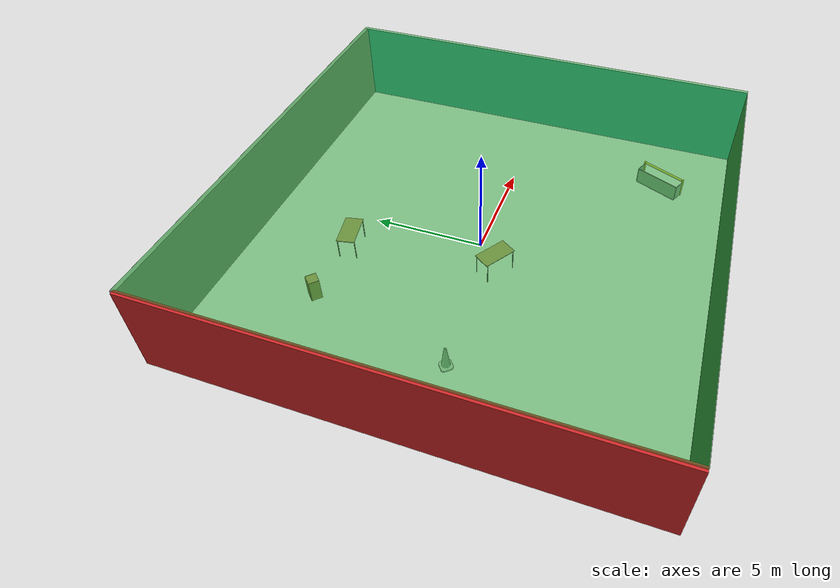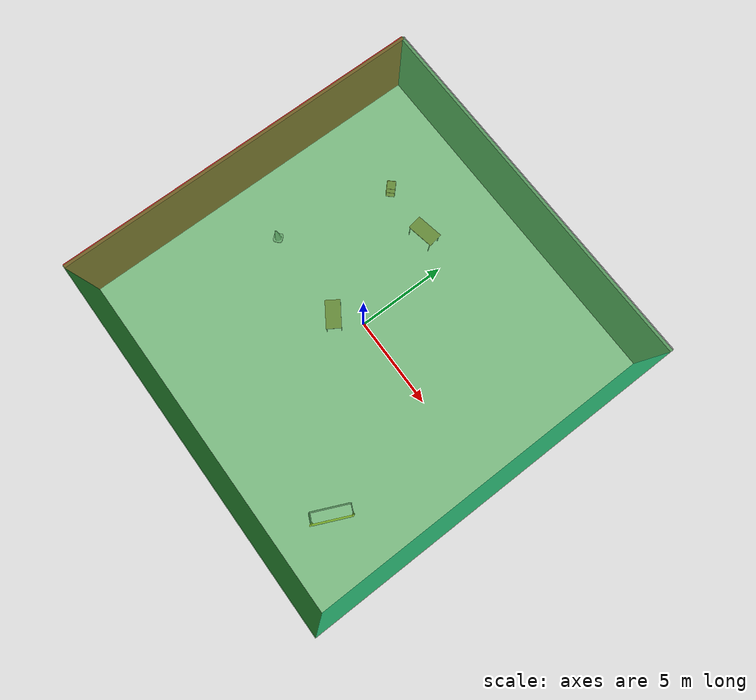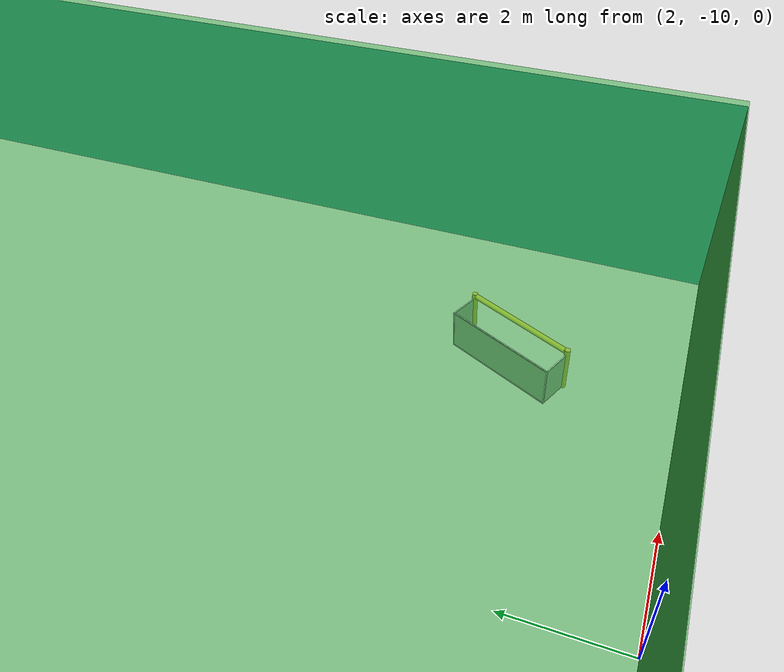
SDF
<sdf version="1.4">
 <world name="default">
  <physics type="ode">
   <max_step_size>0.001</max_step_size>
   <real_time_factor>1</real_time_factor>
   <real_time_update_rate>1000</real_time_update_rate>
   <gravity>0 0 -9.8</gravity>
  </physics>
  <scene><ambient>0.4 0.4 0.4 1</ambient><background>0.7 0.7 0.7 1</background><shadows>1</shadows></scene>
  <model name="Surrounding">
   <static>1</static>
   <link name="Ceiling">
    <collision name="Ceiling_Collision"><geometry><box><size>20 20 0.1</size></box></geometry></collision>
    <visual name="Ceiling_Visual">
     <geometry><box><size>20 20 0.1</size></box></geometry>
     <material>
      <script><uri>file://media/materials/scripts/gazebo.material</uri><name>Gazebo/GreenTransparent</name></script>
     </material>
    </visual>
    <pose>0 0 4.05 0 0 0</pose>
   </link>
   <link name="Wall_South">
    <collision name="Wall_South_Collision">
     <geometry><box><size>20 0 4</size></box></geometry>
     <pose>0 0 2 0 -0 0</pose>
    </collision>
    <visual name="Wall_South_Visual">
     <pose>0 0 2 0 -0 0</pose>
     <geometry><box><size>20 0 4</size></box></geometry>
     <material>
      <script><uri>file://media/materials/scripts/gazebo.material</uri><name>Gazebo/FlatBlack</name></script>
     </material>
    </visual>
    <velocity_decay><linear>0</linear><angular>0</angular></velocity_decay>
    <pose>0 -10 0 0 -0 0</pose>
   </link>
   <link name="Wall_East">
    <collision name="Wall_21_Collision">
     <geometry><box><size>20 0 4</size></box></geometry>
     <pose>0 0 2 0 -0 0</pose>
    </collision>
    <visual name="Wall_21_Visual">
     <pose>0 0 2 0 -0 0</pose>
     <geometry><box><size>20 0 4</size></box></geometry>
     <material>
      <script>
       <uri>file://media/materials/scripts/gazebo.material</uri>
       <name>Gazebo/TurquoiseGlowOutline</name>
      </script>
     </material>
    </visual>
    <velocity_decay><linear>0</linear><angular>0</angular></velocity_decay>
    <pose>10 0 0 0 -0 1.5708</pose>
   </link>
   <link name="Wall_North">
    <collision name="Wall_22_Collision">
     <geometry><box><size>20 0.2 4</size></box></geometry>
     <pose>0 0 2 0 -0 0</pose>
    </collision>
    <visual name="Wall_22_Visual">
     <pose>0 0 2 0 -0 0</pose>
     <geometry><box><size>20 0.2 4</size></box></geometry>
     <material>
      <script><uri>file://media/materials/scripts/gazebo.material</uri><name>Gazebo/GreyGradientSky</name></script>
     </material>
    </visual>
    <velocity_decay><linear>0</linear><angular>0</angular></velocity_decay>
    <pose>0 10 0 0 -0 0</pose>
   </link>
   <link name="Wall_West">
    <collision name="Wall_23_Collision">
     <geometry><box><size>20 0.2 4</size></box></geometry>
     <pose>0 0 2 0 -0 0</pose>
    </collision>
    <visual name="Wall_23_Visual">
     <pose>0 0 2 0 -0 0</pose>
     <geometry><box><size>20 0.2 4</size></box></geometry>
     <material>
      <script><uri>file://media/materials/scripts/gazebo.material</uri><name>Gazebo/RedGlow</name></script>
     </material>
    </visual>
    <velocity_decay><linear>0</linear><angular>0</angular></velocity_decay>
    <pose>-10 0 0 0 0 -1.5708</pose>
   </link>
   <link name="Ground_link">
    <collision name="collision">
     <pose>0 0 .05 0 -0 0</pose>
     <geometry><box><size>20 20 0.1</size></box></geometry>
    </collision>
    <visual name="visual">
     <pose>0 0 .05 0 -0 0</pose>
     <geometry><box><size>20 20 0.1</size></box></geometry>
     <material>
      <script>
       <uri>file://media/materials/scripts/gazebo.material</uri>
       <name>Gazebo/YellowTransparent</name>
      </script>
     </material>
    </visual>
   </link>
   <static>1</static>
  </model>
  <spherical_coordinates>
   <surface_model>EARTH_WGS84</surface_model>
   <latitude_deg>0</latitude_deg>
   <longitude_deg>0</longitude_deg>
   <elevation>0</elevation>
   <heading_deg>0</heading_deg>
  </spherical_coordinates>
  <light name="lightball_0" type="diffuse">
   <diffuse>0.8 0.8 0.8 1</diffuse>
   <specular>0.2 0.2 0.2 1</specular>
   <attenuation>
    <range>100</range>
    <constant>0.7</constant>
    <linear>0.01</linear>
    <quadratic>0.001</quadratic>
   </attenuation>
   <direction>-0.5 0.1 -0.9</direction>
   <pose>6.85856197657 -5.43540535855 2.24801829922 0 0 0</pose>
  </light>
  <light name="lightball_1" type="diffuse">
   <diffuse>0.8 0.8 0.8 1</diffuse>
   <specular>0.2 0.2 0.2 1</specular>
   <attenuation>
    <range>100</range>
    <constant>0.7</constant>
    <linear>0.01</linear>
    <quadratic>0.001</quadratic>
   </attenuation>
   <direction>-0.5 0.1 -0.9</direction>
   <pose>8.49861738187 4.55787729566 2.0912931543 0 0 0</pose>
  </light>
  <light name="lightball_2" type="diffuse">
   <diffuse>0.8 0.8 0.8 1</diffuse>
   <specular>0.2 0.2 0.2 1</specular>
   <attenuation>
    <range>100</range>
    <constant>0.7</constant>
    <linear>0.01</linear>
    <quadratic>0.001</quadratic>
   </attenuation>
   <direction>-0.5 0.1 -0.9</direction>
   <pose>4.08611855185 -9.10334612237 2.14022598605 0 0 0</pose>
  </light>
  <light name="lightball_3" type="diffuse">
   <diffuse>0.8 0.8 0.8 1</diffuse>
   <specular>0.2 0.2 0.2 1</specular>
   <attenuation>
    <range>100</range>
    <constant>0.7</constant>
    <linear>0.01</linear>
    <quadratic>0.001</quadratic>
   </attenuation>
   <direction>-0.5 0.1 -0.9</direction>
   <pose>-1.35663736572 9.46898933643 2.8148240876 0 0 0</pose>
  </light>
  <light name="lightball_4" type="diffuse">
   <diffuse>0.8 0.8 0.8 1</diffuse>
   <specular>0.2 0.2 0.2 1</specular>
   <attenuation>
    <range>100</range>
    <constant>0.7</constant>
    <linear>0.01</linear>
    <quadratic>0.001</quadratic>
   </attenuation>
   <direction>-0.5 0.1 -0.9</direction>
   <pose>-3.2704944536 8.07186881068 3.34983051174 0 0 0</pose>
  </light>
  <light name="lightball_5" type="diffuse">
   <diffuse>0.8 0.8 0.8 1</diffuse>
   <specular>0.2 0.2 0.2 1</specular>
   <attenuation>
    <range>100</range>
    <constant>0.7</constant>
    <linear>0.01</linear>
    <quadratic>0.001</quadratic>
   </attenuation>
   <direction>-0.5 0.1 -0.9</direction>
   <pose>3.59038895843 7.55764841058 3.07603529288 0 0 0</pose>
  </light>
  <include>
   <uri>model://construction_cone</uri>
   <pose>-6.54728998496 -0.815275153092 0 0 0 2.27665031413</pose>
  </include>
  <include><uri>model://cabinet</uri><pose>-4.98705669872 5.58443233946 0 0 0 2.37183260527</pose></include>
  <include><uri>model://table</uri><pose>-1.20745728638 -1.02687469305 0 0 0 2.55539071599</pose></include>
  <include><uri>model://table</uri><pose>-1.89210696725 5.42932110327 0 0 0 0.182046082498</pose></include>
  <include>
   <uri>model://robocup_3Dsim_goal</uri>
   <pose>6.83999328295 -7.03466245464 0 0 0 2.71578749437</pose>
  </include>
 </world>
</sdf>

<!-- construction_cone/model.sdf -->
<sdf version="1.5">
  <model name="Construction Cone">
    <link name="link">
      <collision name="collision">
        <geometry>
          <mesh>
            <scale>10 10 10</scale>
            <uri>file://isr-testbed/construction_cone/meshes/construction_cone.dae</uri>
          </mesh>
        </geometry>
      </collision>
      <visual name="visual">
        <geometry>
          <mesh>
            <scale>10 10 10</scale>
            <uri>file://isr-testbed/construction_cone/meshes/construction_cone.dae</uri>
          </mesh>
        </geometry>
      </visual>
    </link>
  </model>
</sdf>

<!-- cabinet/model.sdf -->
<sdf version="1.5">
  <model name="cabinet">
    <static>true</static>
    <link name="cabinet_bottom_plate">
      <inertial>
        <pose>0 0 -1 0 0 0</pose>
        <inertia>
          <ixx>2.050000</ixx>
          <ixy>0</ixy>
          <ixz>0</ixz>
          <iyy>2.050000</iyy>
          <iyz>0</iyz>
          <izz>2.050000</izz>
        </inertia>
        <mass>25.000000</mass>
      </inertial>
      <collision name="cabinet_bottom_plate_geom">
        <pose>0 0 0.010000 0 0 0</pose>
        <geometry>
          <box>
            <size>0.450000 0.450000 0.020000</size>
          </box>
        </geometry>
      </collision>
      <visual name="cabinet_bottom_plate_geom_visual">
        <pose>0 0 0.010000 0 0 0</pose>
        <geometry>
          <box>
            <size>0.450000 0.450000 0.020000</size>
          </box>
        </geometry>
        <material>
          <script>
            <uri>model://media/materials/scripts/gazebo.material</uri>
            <name>Gazebo/Wood</name>
          </script>
        </material>
      </visual>
      <collision name="cabinet_bottom_plate_geom_cabinet_back_plate">
        <pose>0.235000 0 0.510000 0 0 0</pose>
        <geometry>
          <box>
            <size>0.020000 0.450000 1.020000</size>
          </box>
        </geometry>
      </collision>
      <visual name="cabinet_bottom_plate_geom_cabinet_back_plate_visual">
        <pose>0.235000 0 0.510000 0 0 0</pose>
        <geometry>
          <box>
            <size>0.020000 0.450000 1.020000</size>
          </box>
        </geometry>
        <material>
          <script>
            <uri>model://media/materials/scripts/gazebo.material</uri>
            <name>Gazebo/Wood</name>
          </script>
        </material>
      </visual>
      <collision name="cabinet_bottom_plate_geom_cabinet_left_plate">
        <pose>0 0.235000 0.510000 0 0 0</pose>
        <geometry>
          <box>
            <size>0.450000 0.020000 1.020000</size>
          </box>
        </geometry>
      </collision>
      <visual name="cabinet_bottom_plate_geom_cabinet_left_plate_visual">
        <pose>0 0.235000 0.510000 0 0 0</pose>
        <geometry>
          <box>
            <size>0.450000 0.020000 1.020000</size>
          </box>
        </geometry>
        <material>
          <script>
            <uri>model://media/materials/scripts/gazebo.material</uri>
            <name>Gazebo/Wood</name>
          </script>
        </material>
      </visual>
      <collision name="cabinet_bottom_plate_geom_cabinet_middle_plate">
        <pose>0 0 0.510000 0 0 0</pose>
        <geometry>
          <box>
            <size>0.450000 0.450000 0.020000</size>
          </box>
        </geometry>
      </collision>
      <visual name="cabinet_bottom_plate_geom_cabinet_middle_plate_visual">
        <pose>0 0 0.510000 0 0 0</pose>
        <geometry>
          <box>
            <size>0.450000 0.450000 0.020000</size>
          </box>
        </geometry>
        <material>
          <script>
            <uri>model://media/materials/scripts/gazebo.material</uri>
            <name>Gazebo/Wood</name>
          </script>
        </material>
      </visual>
      <collision name="cabinet_bottom_plate_geom_cabinet_right_plate">
        <pose>0 -0.235000 0.510000 0 0 0</pose>
        <geometry>
          <box>
            <size>0.450000 0.020000 1.020000</size>
          </box>
        </geometry>
      </collision>
      <visual name="cabinet_bottom_plate_geom_cabinet_right_plate_visual">
        <pose>0 -0.235000 0.510000 0 0 0</pose>
        <geometry>
          <box>
            <size>0.450000 0.020000 1.020000</size>
          </box>
        </geometry>
        <material>
          <script>
            <uri>model://media/materials/scripts/gazebo.material</uri>
            <name>Gazebo/Wood</name>
          </script>
        </material>
      </visual>
      <collision name="cabinet_bottom_plate_geom_cabinet_top_plate">
        <pose>0 0 1.010000 0 0 0</pose>
        <geometry>
          <box>
            <size>0.450000 0.450000 0.020000</size>
          </box>
        </geometry>
      </collision>
      <visual name="cabinet_bottom_plate_geom_cabinet_top_plate_visual">
        <pose>0 0 1.010000 0 0 0</pose>
        <geometry>
          <box>
            <size>0.450000 0.450000 0.020000</size>
          </box>
        </geometry>
        <material>
          <script>
            <uri>model://media/materials/scripts/gazebo.material</uri>
            <name>Gazebo/Wood</name>
          </script>
        </material>
      </visual>
    </link>
  </model>
</sdf>

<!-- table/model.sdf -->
<sdf version="1.5">
  <model name="table">
    <static>true</static>
    <link name="link">
      <collision name="surface">
        <pose>0 0 1.0 0 0 0</pose>
        <geometry>
          <box>
            <size>1.5 0.8 0.03</size>
          </box>
        </geometry>
        <surface>
          <friction>
            <ode>
              <mu>0.6</mu>
              <mu2>0.6</mu2>
            </ode>
          </friction>
        </surface>
      </collision>
      <visual name="visual1">
        <pose>0 0 1.0 0 0 0</pose>
        <geometry>
          <box>
            <size>1.5 0.8 0.03</size>
          </box>
        </geometry>
        <material>
          <script>
            <uri>model://media/materials/scripts/gazebo.material</uri>
            <name>Gazebo/Wood</name>
          </script>
        </material>
      </visual>
      <collision name="front_left_leg">
        <pose>0.68 0.38 0.5 0 0 0</pose>
        <geometry>
          <cylinder>
            <radius>0.02</radius>
            <length>1.0</length>
          </cylinder>
        </geometry>
      </collision>
      <visual name="front_left_leg">
        <pose>0.68 0.38 0.5 0 0 0</pose>
        <geometry>
          <cylinder>
            <radius>0.02</radius>
            <length>1.0</length>
          </cylinder>
        </geometry>
        <material>
          <script>
            <uri>model://media/materials/scripts/gazebo.material</uri>
            <name>Gazebo/Grey</name>
          </script>
        </material>
      </visual>
      <collision name="front_right_leg">
        <pose>0.68 -0.38 0.5 0 0 0</pose>
        <geometry>
          <cylinder>
            <radius>0.02</radius>
            <length>1.0</length>
          </cylinder>
        </geometry>
      </collision>
      <visual name="front_right_leg">
        <pose>0.68 -0.38 0.5 0 0 0</pose>
        <geometry>
          <cylinder>
            <radius>0.02</radius>
            <length>1.0</length>
          </cylinder>
        </geometry>
        <material>
          <script>
            <uri>model://media/materials/scripts/gazebo.material</uri>
            <name>Gazebo/Grey</name>
          </script>
        </material>
      </visual>
      <collision name="back_right_leg">
        <pose>-0.68 -0.38 0.5 0 0 0</pose>
        <geometry>
          <cylinder>
            <radius>0.02</radius>
            <length>1.0</length>
          </cylinder>
        </geometry>
      </collision>
      <visual name="back_right_leg">
        <pose>-0.68 -0.38 0.5 0 0 0</pose>
        <geometry>
          <cylinder>
            <radius>0.02</radius>
            <length>1.0</length>
          </cylinder>
        </geometry>
        <material>
          <script>
            <uri>model://media/materials/scripts/gazebo.material</uri>
            <name>Gazebo/Grey</name>
          </script>
        </material>
      </visual>
      <collision name="back_left_leg">
        <pose>-0.68 0.38 0.5 0 0 0</pose>
        <geometry>
          <cylinder>
            <radius>0.02</radius>
            <length>1.0</length>
          </cylinder>
        </geometry>
      </collision>
      <visual name="back_left_leg">
        <pose>-0.68 0.38 0.5 0 0 0</pose>
        <geometry>
          <cylinder>
            <radius>0.02</radius>
            <length>1.0</length>
          </cylinder>
        </geometry>
        <material>
          <script>
            <uri>model://media/materials/scripts/gazebo.material</uri>
            <name>Gazebo/Grey</name>
          </script>
        </material>
      </visual>
    </link>
  </model>
</sdf>

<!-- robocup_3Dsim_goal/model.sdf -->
<sdf version="1.5">
  <model name="robocup_3d_goal">
    <static>true</static>
    <link name="left_post">
      <pose>0 1.05 0.45 0 0 0</pose>
      <collision name="collision">
        <geometry>
          <cylinder>
            <radius>0.05</radius>
            <length>0.9</length>
          </cylinder>
        </geometry>
      </collision>
      <visual name="visual">
        <geometry>
          <cylinder>
            <radius>0.05</radius>
            <length>0.9</length>
          </cylinder>
        </geometry>
        <material>
          <script>
            <uri>file://media/materials/scripts/gazebo.material</uri>
            <name>Gazebo/ZincYellow</name>
          </script>
        </material>
      </visual>
    </link>
    <link name="left_support_horiz_lower">
      <pose>0.30 1.05 0.01 0 0 0</pose>
      <collision name="collision">
        <geometry>
          <box>
            <size>0.50 0.02 0.02</size>
          </box>
        </geometry>
      </collision>
      <visual name="visual">
        <geometry>
          <box>
            <size>0.50 0.02 0.02</size>
          </box>
        </geometry>
        <material>
          <script>
            <uri>file://media/materials/scripts/gazebo.material</uri>
            <name>Gazebo/White</name>
          </script>
        </material>
      </visual>
    </link>
    <link name="left_support_horiz_upper">
      <pose>0.30 1.05 0.79 0 0 0</pose>
      <collision name="collision">
        <geometry>
          <box>
            <size>0.50 0.02 0.02</size>
          </box>
        </geometry>
      </collision>
      <visual name="visual">
        <geometry>
          <box>
            <size>0.50 0.02 0.02</size>
          </box>
        </geometry>
        <material>
          <script>
            <uri>file://media/materials/scripts/gazebo.material</uri>
            <name>Gazebo/White</name>
          </script>
        </material>
      </visual>
    </link>
    <link name="left_support_vertical">
      <pose>0.56 1.05 0.4 0 1.5708 0</pose>
      <collision name="collision">
        <geometry>
          <box>
            <size>0.80 0.02 0.02</size>
          </box>
        </geometry>
      </collision>
      <visual name="visual">
        <geometry>
          <box>
            <size>0.80 0.02 0.02</size>
          </box>
        </geometry>
        <material>
          <script>
            <uri>file://media/materials/scripts/gazebo.material</uri>
            <name>Gazebo/White</name>
          </script>
        </material>
      </visual>
    </link>
    <link name="right_support_horiz_lower">
      <pose>0.30 -1.05 0.01 0 0 0</pose>
      <collision name="collision">
        <geometry>
          <box>
            <size>0.50 0.02 0.02</size>
          </box>
        </geometry>
      </collision>
      <visual name="visual">
        <geometry>
          <box>
            <size>0.50 0.02 0.02</size>
          </box>
        </geometry>
        <material>
          <script>
            <uri>file://media/materials/scripts/gazebo.material</uri>
            <name>Gazebo/White</name>
          </script>
        </material>
      </visual>
    </link>
    <link name="right_support_horiz_upper">
      <pose>0.30 -1.05 0.79 0 0 0</pose>
      <collision name="collision">
        <geometry>
          <box>
            <size>0.50 0.02 0.02</size>
          </box>
        </geometry>
      </collision>
      <visual name="visual">
        <geometry>
          <box>
            <size>0.50 0.02 0.02</size>
          </box>
        </geometry>
        <material>
          <script>
            <uri>file://media/materials/scripts/gazebo.material</uri>
            <name>Gazebo/White</name>
          </script>
        </material>
      </visual>
    </link>
    <link name="right_support_vertical">
      <pose>0.56 -1.05 0.4 0 1.5708 0</pose>
      <collision name="collision">
        <geometry>
          <box>
            <size>0.80 0.02 0.02</size>
          </box>
        </geometry>
      </collision>
      <visual name="visual">
        <geometry>
          <box>
            <size>0.80 0.02 0.02</size>
          </box>
        </geometry>
        <material>
          <script>
            <uri>file://media/materials/scripts/gazebo.material</uri>
            <name>Gazebo/White</name>
          </script>
        </material>
      </visual>
    </link>
    <link name="center_support_horiz_lower">
      <pose>0.56 0 0.01 0 1.5708 0</pose>
      <collision name="collision">
        <geometry>
          <box>
            <size>0.02 2.08 0.02</size>
          </box>
        </geometry>
      </collision>
      <visual name="visual">
        <geometry>
          <box>
            <size>0.02 2.08 0.02</size>
          </box>
        </geometry>
        <material>
          <script>
            <uri>file://media/materials/scripts/gazebo.material</uri>
            <name>Gazebo/White</name>
          </script>
        </material>
      </visual>
    </link>
    <link name="center_support_horiz_upper">
      <pose>0.56 0 0.79 0 1.5708 0</pose>
      <collision name="collision">
        <geometry>
          <box>
            <size>0.02 2.08 0.02</size>
          </box>
        </geometry>
      </collision>
      <visual name="visual">
        <geometry>
          <box>
            <size>0.02 2.08 0.02</size>
          </box>
        </geometry>
        <material>
          <script>
            <uri>file://media/materials/scripts/gazebo.material</uri>
            <name>Gazebo/White</name>
          </script>
        </material>
      </visual>
    </link>
    <link name="right_post">
      <pose>0 -1.05 0.45 0 0 0</pose>
      <collision name="collision">
        <geometry>
          <cylinder>
            <radius>0.05</radius>
            <length>0.9</length>
          </cylinder>
        </geometry>
      </collision>
      <visual name="visual">
        <geometry>
          <cylinder>
            <radius>0.05</radius>
            <length>0.9</length>
          </cylinder>
        </geometry>
        <material>
          <script>
            <uri>file://media/materials/scripts/gazebo.material</uri>
            <name>Gazebo/ZincYellow</name>
          </script>
        </material>
      </visual>
    </link>
    <link name="crossbar">
      <pose>0 0 0.85 1.57 1.57 0</pose>
      <collision name="collision">
        <geometry>
          <cylinder>
            <radius>0.05</radius>
            <length>2.0</length>
          </cylinder>
        </geometry>
      </collision>
      <visual name="visual">
        <geometry>
          <cylinder>
            <radius>0.05</radius>
            <length>2.0</length>
          </cylinder>
        </geometry>
        <material>
          <script>
            <uri>file://media/materials/scripts/gazebo.material</uri>
            <name>Gazebo/ZincYellow</name>
          </script>
        </material>
      </visual>
    </link>
    <link name="center_net">
      <pose>0.56 0 0.40 0 0 0</pose>
      <collision name="collision">
        <geometry>
          <box>
            <size>0.01 2.1 0.80</size>
          </box>
        </geometry>
      </collision>
      <visual name="visual">
        <geometry>
          <box>
            <size>0.01 2.1 0.80</size>
          </box>
        </geometry>
        <material>
          <script>
            <uri>model://../model_source/models/robocup09_spl_field/materials/scripts/</uri>
            <uri>model://../model_source/models/robocup09_spl_field/materials/textures/</uri>
            <name>RoboCup/Net</name>
          </script>
        </material>
      </visual>
    </link>
    <link name="left_net">
      <pose>0.30 1.05 0.40 0 0 0</pose>
      <collision name="collision">
        <geometry>
          <box>
            <size>0.50 0.01 0.76</size>
          </box>
        </geometry>
      </collision>
      <visual name="visual">
        <geometry>
          <box>
            <size>0.50 0.01 0.76</size>
          </box>
        </geometry>
        <material>
          <script>
            <uri>model://../model_source/models/robocup09_spl_field/materials/scripts/</uri>
            <uri>model://../model_source/models/robocup09_spl_field/materials/textures/</uri>
            <name>RoboCup/Net</name>
          </script>
        </material>
      </visual>
    </link>
    <link name="right_net">
      <pose>0.30 -1.05 0.40 0 0 0</pose>
      <collision name="collision">
        <geometry>
          <box>
            <size>0.50 0.01 0.76</size>
          </box>
        </geometry>
      </collision>
      <visual name="visual">
        <geometry>
          <box>
            <size>0.50 0.01 0.76</size>
          </box>
        </geometry>
        <material>
          <script>
            <uri>model://../model_source/models/robocup09_spl_field/materials/scripts/</uri>
            <uri>model://../model_source/models/robocup09_spl_field/materials/textures/</uri>
            <name>RoboCup/Net</name>
          </script>
        </material>
      </visual>
    </link>
  </model>
</sdf>
